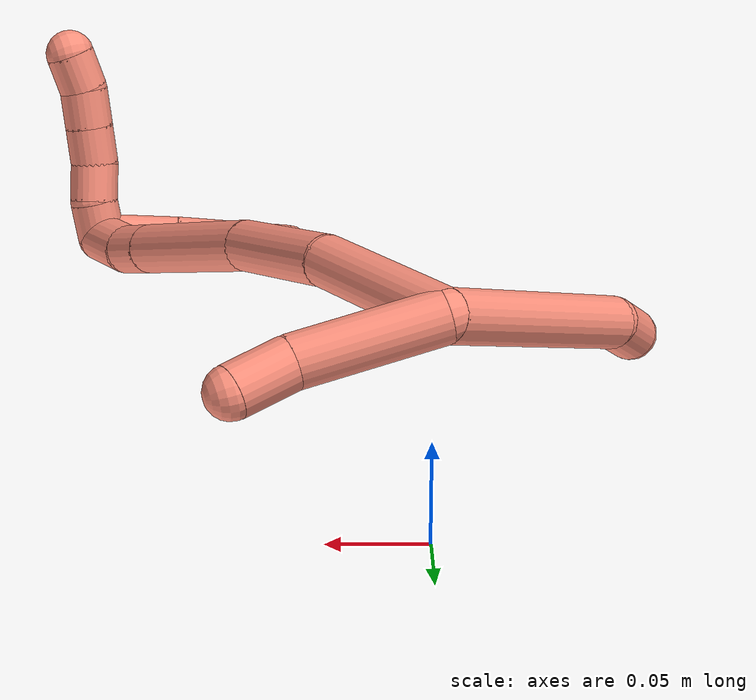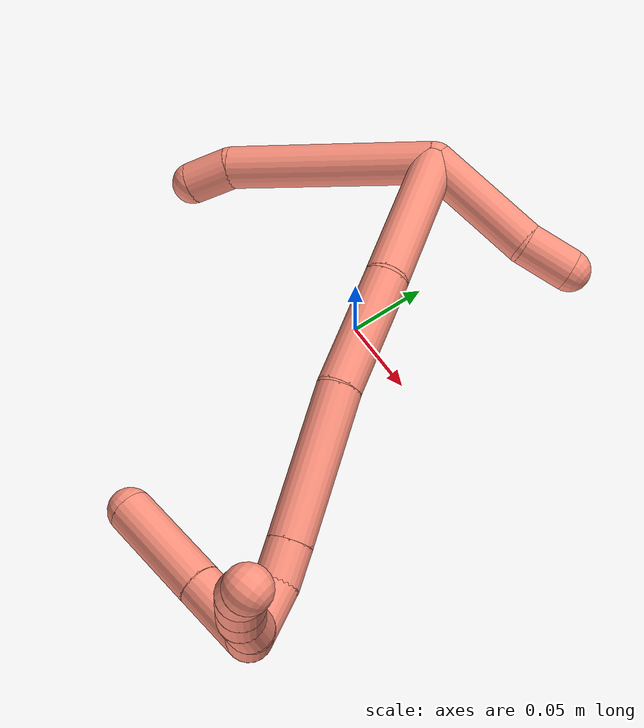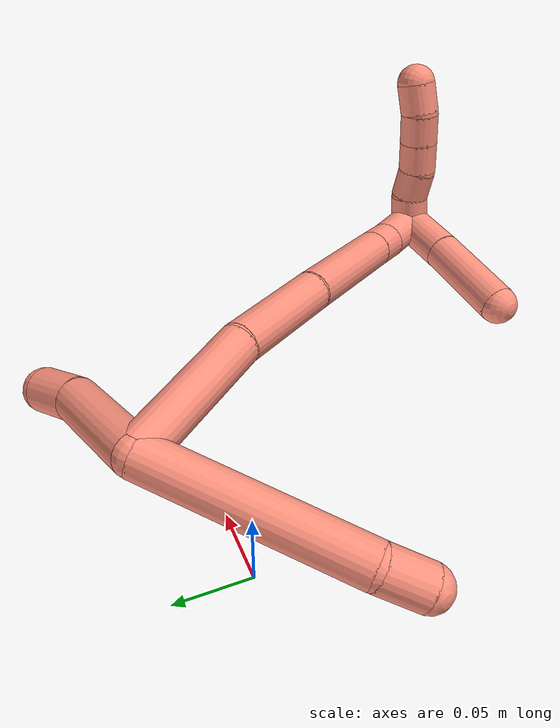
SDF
<sdf version="1.7">
 <world name="default">
  <model name="photoneo_s_sensor">
   <static>1</static>
   <pose>0 0 2 1.57079 1.57079 3.14159</pose>
   <link name="link">
    <inertial><mass>0.1</mass></inertial>
    <sensor name="sensor" type="depth">
     <update_rate>30</update_rate>
     <camera>
      <horizontal_fov>1.22</horizontal_fov>
      <image><width>1920</width><height>1200</height><format>B8G8R8</format></image>
      <clip><near>0.1</near><far>4</far></clip>
      <depth_camera><output>points</output></depth_camera>
     </camera>
     <plugin name="camera_plugin" filename="libgazebo_ros_depth_camera.so">
      <baseline>0.2</baseline>
      <alwaysOn>1</alwaysOn>
      <updateRate>0.0</updateRate>
      <cameraName>camera_ir</cameraName>
      <imageTopicName>/camera/color/image_raw</imageTopicName>
      <cameraInfoTopicName>/camera/color/camera_info</cameraInfoTopicName>
      <depthImageTopicName>/camera/depth/image_raw</depthImageTopicName>
      <depthImageCameraInfoTopicName>/camera/depth/camera_info</depthImageCameraInfoTopicName>
      <pointCloudTopicName>/camera/depth/points</pointCloudTopicName>
      <frameName>fr_optical</frameName>
      <pointCloudCutoff>0.1</pointCloudCutoff>
      <pointCloudCutoffMax>2.0</pointCloudCutoffMax>
      <distortionK1>0</distortionK1>
      <distortionK2>0</distortionK2>
      <distortionK3>0</distortionK3>
      <distortionT1>0</distortionT1>
      <distortionT2>0</distortionT2>
      <CxPrime>0</CxPrime>
      <Cx>0</Cx>
      <Cy>0</Cy>
      <focalLength>0</focalLength>
      <hackBaseline>0</hackBaseline>
     </plugin>
    </sensor>
   </link>
  </model>
  <model name="bin">
   <static>1</static>
   <link name="bottom">
    <collision name="collision-bottom">
     <pose>0 0 -0.01 0 -0 0</pose>
     <geometry><box><size>0.8 0.6 0.02</size></box></geometry>
     <surface>
      <friction><ode><mu>100</mu><mu2>100</mu2></ode></friction>
      <contact><collide_bitmask>65535</collide_bitmask></contact>
     </surface>
    </collision>
   </link>
   <link name="west_wall">
    <collision name="collision-west_wall">
     <pose>-0.41 0 0.1 0 -0 0</pose>
     <geometry><box><size>0.02 0.6 0.2</size></box></geometry>
     <surface>
      <friction><ode><mu>100</mu><mu2>100</mu2></ode></friction>
      <contact><collide_bitmask>65535</collide_bitmask></contact>
     </surface>
    </collision>
   </link>
   <link name="east_wall">
    <collision name="collision-east_wall">
     <pose>0.41 0 0.1 0 -0 0</pose>
     <geometry><box><size>0.02 0.6 0.2</size></box></geometry>
     <surface>
      <friction><ode><mu>100</mu><mu2>100</mu2></ode></friction>
      <contact><collide_bitmask>65535</collide_bitmask></contact>
     </surface>
    </collision>
   </link>
   <link name="south_wall">
    <collision name="collision-south_wall">
     <pose>0 -0.31 0.1 0 -0 0</pose>
     <geometry><box><size>0.8 0.02 0.2</size></box></geometry>
     <surface>
      <friction><ode><mu>100</mu><mu2>100</mu2></ode></friction>
      <contact><collide_bitmask>65535</collide_bitmask></contact>
     </surface>
    </collision>
   </link>
   <link name="north_wall">
    <collision name="collision-north_wall">
     <pose>0 0.31 0.1 0 -0 0</pose>
     <geometry><box><size>0.8 0.02 0.2</size></box></geometry>
     <surface>
      <friction><ode><mu>100</mu><mu2>100</mu2></ode></friction>
      <contact><collide_bitmask>65535</collide_bitmask></contact>
     </surface>
    </collision>
   </link>
  </model>
  <model name="16">
   <static>0</static>
   <link name="16">
    <collision name="collision-cylinder-e_1_2_8">
     <pose>0.034185 -0.01733 -0.048236 2.79668 0.588213 2.0978</pose>
     <geometry><cylinder><radius>0.0125</radius><length>0.123218</length></cylinder></geometry>
     <surface>
      <friction><ode><mu>1.16</mu><mu2>1.16</mu2><slip1>0</slip1><slip2>0</slip2></ode></friction>
      <contact><ode><kp>1e+06</kp><kd>1</kd><max_vel>0</max_vel><min_depth>0.001</min_depth></ode></contact>
     </surface>
    </collision>
    <visual name="visual-cylinder-e_1_2_8">
     <pose>0.034185 -0.01733 -0.048236 2.79668 0.588213 2.0978</pose>
     <geometry><cylinder><radius>0.0125</radius><length>0.123218</length></cylinder></geometry>
     <material><ambient>1 0.576471 0.494118 1</ambient></material>
    </visual>
    <collision name="collision-cylinder-e_2_8_6">
     <pose>0.078676 -0.039221 -0.103705 2.57892 0.878152 2.03833</pose>
     <geometry><cylinder><radius>0.0125</radius><length>0.026782</length></cylinder></geometry>
     <surface>
      <friction><ode><mu>1.16</mu><mu2>1.16</mu2><slip1>0</slip1><slip2>0</slip2></ode></friction>
      <contact><ode><kp>1e+06</kp><kd>1</kd><max_vel>0</max_vel><min_depth>0.001</min_depth></ode></contact>
     </surface>
    </collision>
    <visual name="visual-cylinder-e_2_8_6">
     <pose>0.078676 -0.039221 -0.103705 2.57892 0.878152 2.03833</pose>
     <geometry><cylinder><radius>0.0125</radius><length>0.026782</length></cylinder></geometry>
     <material><ambient>1 0.576471 0.494118 1</ambient></material>
    </visual>
    <collision name="collision-cylinder-e_1_2_9">
     <pose>0.00176 -0.001161 0.035125 0.033033 0.050034 0.000827</pose>
     <geometry><cylinder><radius>0.0125</radius><length>0.070377</length></cylinder></geometry>
     <surface>
      <friction><ode><mu>1.16</mu><mu2>1.16</mu2><slip1>0</slip1><slip2>0</slip2></ode></friction>
      <contact><ode><kp>1e+06</kp><kd>1</kd><max_vel>0</max_vel><min_depth>0.001</min_depth></ode></contact>
     </surface>
    </collision>
    <visual name="visual-cylinder-e_1_2_9">
     <pose>0.00176 -0.001161 0.035125 0.033033 0.050034 0.000827</pose>
     <geometry><cylinder><radius>0.0125</radius><length>0.070377</length></cylinder></geometry>
     <material><ambient>1 0.576471 0.494118 1</ambient></material>
    </visual>
    <collision name="collision-cylinder-e_2_9_5">
     <pose>0.003787 0.000984 0.084686 -0.225121 0.018059 -0.002041</pose>
     <geometry><cylinder><radius>0.0125</radius><length>0.029623</length></cylinder></geometry>
     <surface>
      <friction><ode><mu>1.16</mu><mu2>1.16</mu2><slip1>0</slip1><slip2>0</slip2></ode></friction>
      <contact><ode><kp>1e+06</kp><kd>1</kd><max_vel>0</max_vel><min_depth>0.001</min_depth></ode></contact>
     </surface>
    </collision>
    <visual name="visual-cylinder-e_2_9_5">
     <pose>0.003787 0.000984 0.084686 -0.225121 0.018059 -0.002041</pose>
     <geometry><cylinder><radius>0.0125</radius><length>0.029623</length></cylinder></geometry>
     <material><ambient>1 0.576471 0.494118 1</ambient></material>
    </visual>
    <collision name="collision-cylinder-e_1_2_10">
     <pose>0.011944 -0.040115 0.013662 1.24255 0.274718 0.197257</pose>
     <geometry><cylinder><radius>0.0125</radius><length>0.088058</length></cylinder></geometry>
     <surface>
      <friction><ode><mu>1.16</mu><mu2>1.16</mu2><slip1>0</slip1><slip2>0</slip2></ode></friction>
      <contact><ode><kp>1e+06</kp><kd>1</kd><max_vel>0</max_vel><min_depth>0.001</min_depth></ode></contact>
     </surface>
    </collision>
    <visual name="visual-cylinder-e_1_2_10">
     <pose>0.011944 -0.040115 0.013662 1.24255 0.274718 0.197257</pose>
     <geometry><cylinder><radius>0.0125</radius><length>0.088058</length></cylinder></geometry>
     <material><ambient>1 0.576471 0.494118 1</ambient></material>
    </visual>
    <collision name="collision-cylinder-e_2_10_11">
     <pose>0.039448 -0.110076 0.037898 1.2303 0.456771 0.325585</pose>
     <geometry><cylinder><radius>0.0125</radius><length>0.07056</length></cylinder></geometry>
     <surface>
      <friction><ode><mu>1.16</mu><mu2>1.16</mu2><slip1>0</slip1><slip2>0</slip2></ode></friction>
      <contact><ode><kp>1e+06</kp><kd>1</kd><max_vel>0</max_vel><min_depth>0.001</min_depth></ode></contact>
     </surface>
    </collision>
    <visual name="visual-cylinder-e_2_10_11">
     <pose>0.039448 -0.110076 0.037898 1.2303 0.456771 0.325585</pose>
     <geometry><cylinder><radius>0.0125</radius><length>0.07056</length></cylinder></geometry>
     <material><ambient>1 0.576471 0.494118 1</ambient></material>
    </visual>
    <collision name="collision-cylinder-e_3_11_12">
     <pose>0.077168 -0.173612 0.065296 1.10767 0.531869 0.333753</pose>
     <geometry><cylinder><radius>0.0125</radius><length>0.087388</length></cylinder></geometry>
     <surface>
      <friction><ode><mu>1.16</mu><mu2>1.16</mu2><slip1>0</slip1><slip2>0</slip2></ode></friction>
      <contact><ode><kp>1e+06</kp><kd>1</kd><max_vel>0</max_vel><min_depth>0.001</min_depth></ode></contact>
     </surface>
    </collision>
    <visual name="visual-cylinder-e_3_11_12">
     <pose>0.077168 -0.173612 0.065296 1.10767 0.531869 0.333753</pose>
     <geometry><cylinder><radius>0.0125</radius><length>0.087388</length></cylinder></geometry>
     <material><ambient>1 0.576471 0.494118 1</ambient></material>
    </visual>
    <collision name="collision-cylinder-e_4_12_13">
     <pose>0.105084 -0.215989 0.086314 1.12087 0.538102 0.342686</pose>
     <geometry><cylinder><radius>0.0125</radius><length>0.022466</length></cylinder></geometry>
     <surface>
      <friction><ode><mu>1.16</mu><mu2>1.16</mu2><slip1>0</slip1><slip2>0</slip2></ode></friction>
      <contact><ode><kp>1e+06</kp><kd>1</kd><max_vel>0</max_vel><min_depth>0.001</min_depth></ode></contact>
     </surface>
    </collision>
    <visual name="visual-cylinder-e_4_12_13">
     <pose>0.105084 -0.215989 0.086314 1.12087 0.538102 0.342686</pose>
     <geometry><cylinder><radius>0.0125</radius><length>0.022466</length></cylinder></geometry>
     <material><ambient>1 0.576471 0.494118 1</ambient></material>
    </visual>
    <collision name="collision-cylinder-e_5_13_1">
     <pose>0.116621 -0.238857 0.094247 1.3131 0.375428 0.290683</pose>
     <geometry><cylinder><radius>0.0125</radius><length>0.031528</length></cylinder></geometry>
     <surface>
      <friction><ode><mu>1.16</mu><mu2>1.16</mu2><slip1>0</slip1><slip2>0</slip2></ode></friction>
      <contact><ode><kp>1e+06</kp><kd>1</kd><max_vel>0</max_vel><min_depth>0.001</min_depth></ode></contact>
     </surface>
    </collision>
    <visual name="visual-cylinder-e_5_13_1">
     <pose>0.116621 -0.238857 0.094247 1.3131 0.375428 0.290683</pose>
     <geometry><cylinder><radius>0.0125</radius><length>0.031528</length></cylinder></geometry>
     <material><ambient>1 0.576471 0.494118 1</ambient></material>
    </visual>
    <collision name="collision-cylinder-e_1_1_14">
     <pose>0.125584 -0.24773 0.079097 -2.86757 0.160809 -1.05777</pose>
     <geometry><cylinder><radius>0.0125</radius><length>0.039752</length></cylinder></geometry>
     <surface>
      <friction><ode><mu>1.16</mu><mu2>1.16</mu2><slip1>0</slip1><slip2>0</slip2></ode></friction>
      <contact><ode><kp>1e+06</kp><kd>1</kd><max_vel>0</max_vel><min_depth>0.001</min_depth></ode></contact>
     </surface>
    </collision>
    <visual name="visual-cylinder-e_1_1_14">
     <pose>0.125584 -0.24773 0.079097 -2.86757 0.160809 -1.05777</pose>
     <geometry><cylinder><radius>0.0125</radius><length>0.039752</length></cylinder></geometry>
     <material><ambient>1 0.576471 0.494118 1</ambient></material>
    </visual>
    <collision name="collision-cylinder-e_2_14_4">
     <pose>0.13444 -0.233668 0.031949 -2.84128 0.189477 -1.12159</pose>
     <geometry><cylinder><radius>0.0125</radius><length>0.060248</length></cylinder></geometry>
     <surface>
      <friction><ode><mu>1.16</mu><mu2>1.16</mu2><slip1>0</slip1><slip2>0</slip2></ode></friction>
      <contact><ode><kp>1e+06</kp><kd>1</kd><max_vel>0</max_vel><min_depth>0.001</min_depth></ode></contact>
     </surface>
    </collision>
    <visual name="visual-cylinder-e_2_14_4">
     <pose>0.13444 -0.233668 0.031949 -2.84128 0.189477 -1.12159</pose>
     <geometry><cylinder><radius>0.0125</radius><length>0.060248</length></cylinder></geometry>
     <material><ambient>1 0.576471 0.494118 1</ambient></material>
    </visual>
    <collision name="collision-cylinder-e_1_1_15">
     <pose>0.113606 -0.257791 0.097747 1.62063 -1.07486 -1.11922</pose>
     <geometry><cylinder><radius>0.0125</radius><length>0.02</length></cylinder></geometry>
     <surface>
      <friction><ode><mu>1.16</mu><mu2>1.16</mu2><slip1>0</slip1><slip2>0</slip2></ode></friction>
      <contact><ode><kp>1e+06</kp><kd>1</kd><max_vel>0</max_vel><min_depth>0.001</min_depth></ode></contact>
     </surface>
    </collision>
    <visual name="visual-cylinder-e_1_1_15">
     <pose>0.113606 -0.257791 0.097747 1.62063 -1.07486 -1.11922</pose>
     <geometry><cylinder><radius>0.0125</radius><length>0.02</length></cylinder></geometry>
     <material><ambient>1 0.576471 0.494118 1</ambient></material>
    </visual>
    <collision name="collision-cylinder-e_2_15_16">
     <pose>0.097006 -0.268173 0.094792 2.02069 -0.895466 -1.3064</pose>
     <geometry><cylinder><radius>0.0125</radius><length>0.02</length></cylinder></geometry>
     <surface>
      <friction><ode><mu>1.16</mu><mu2>1.16</mu2><slip1>0</slip1><slip2>0</slip2></ode></friction>
      <contact><ode><kp>1e+06</kp><kd>1</kd><max_vel>0</max_vel><min_depth>0.001</min_depth></ode></contact>
     </surface>
    </collision>
    <visual name="visual-cylinder-e_2_15_16">
     <pose>0.097006 -0.268173 0.094792 2.02069 -0.895466 -1.3064</pose>
     <geometry><cylinder><radius>0.0125</radius><length>0.02</length></cylinder></geometry>
     <material><ambient>1 0.576471 0.494118 1</ambient></material>
    </visual>
    <collision name="collision-cylinder-e_3_16_17">
     <pose>0.080446 -0.278552 0.091177 1.75734 -1.06638 -1.23751</pose>
     <geometry><cylinder><radius>0.0125</radius><length>0.02</length></cylinder></geometry>
     <surface>
      <friction><ode><mu>1.16</mu><mu2>1.16</mu2><slip1>0</slip1><slip2>0</slip2></ode></friction>
      <contact><ode><kp>1e+06</kp><kd>1</kd><max_vel>0</max_vel><min_depth>0.001</min_depth></ode></contact>
     </surface>
    </collision>
    <visual name="visual-cylinder-e_3_16_17">
     <pose>0.080446 -0.278552 0.091177 1.75734 -1.06638 -1.23751</pose>
     <geometry><cylinder><radius>0.0125</radius><length>0.02</length></cylinder></geometry>
     <material><ambient>1 0.576471 0.494118 1</ambient></material>
    </visual>
    <collision name="collision-cylinder-e_4_17_18">
     <pose>0.062886 -0.287962 0.089425 1.75227 -1.07714 -1.24423</pose>
     <geometry><cylinder><radius>0.0125</radius><length>0.02</length></cylinder></geometry>
     <surface>
      <friction><ode><mu>1.16</mu><mu2>1.16</mu2><slip1>0</slip1><slip2>0</slip2></ode></friction>
      <contact><ode><kp>1e+06</kp><kd>1</kd><max_vel>0</max_vel><min_depth>0.001</min_depth></ode></contact>
     </surface>
    </collision>
    <visual name="visual-cylinder-e_4_17_18">
     <pose>0.062886 -0.287962 0.089425 1.75227 -1.07714 -1.24423</pose>
     <geometry><cylinder><radius>0.0125</radius><length>0.02</length></cylinder></geometry>
     <material><ambient>1 0.576471 0.494118 1</ambient></material>
    </visual>
    <collision name="collision-cylinder-e_5_18_3">
     <pose>0.045298 -0.297215 0.089905 1.28794 -1.07211 -0.839041</pose>
     <geometry><cylinder><radius>0.0125</radius><length>0.02</length></cylinder></geometry>
     <surface>
      <friction><ode><mu>1.16</mu><mu2>1.16</mu2><slip1>0</slip1><slip2>0</slip2></ode></friction>
      <contact><ode><kp>1e+06</kp><kd>1</kd><max_vel>0</max_vel><min_depth>0.001</min_depth></ode></contact>
     </surface>
    </collision>
    <visual name="visual-cylinder-e_5_18_3">
     <pose>0.045298 -0.297215 0.089905 1.28794 -1.07211 -0.839041</pose>
     <geometry><cylinder><radius>0.0125</radius><length>0.02</length></cylinder></geometry>
     <material><ambient>1 0.576471 0.494118 1</ambient></material>
    </visual>
    <collision name="collision-sphere-3">
     <pose>0.036515 -0.301808 0.09124 0 -0 0</pose>
     <geometry><sphere><radius>0.0125</radius></sphere></geometry>
     <surface>
      <friction><ode><mu>1.16</mu><mu2>1.16</mu2><slip1>0</slip1><slip2>0</slip2></ode></friction>
      <contact><ode><kp>1e+06</kp><kd>1</kd><max_vel>0</max_vel><min_depth>0.001</min_depth></ode></contact>
     </surface>
    </collision>
    <visual name="visual-sphere-3">
     <pose>0.036515 -0.301808 0.09124 0 -0 0</pose>
     <geometry><sphere><radius>0.0125</radius></sphere></geometry>
     <material><ambient>1 0.576471 0.494118 1</ambient></material>
    </visual>
    <collision name="collision-sphere-10">
     <pose>0.023888 -0.080231 0.027324 0 -0 0</pose>
     <geometry><sphere><radius>0.0125</radius></sphere></geometry>
     <surface>
      <friction><ode><mu>1.16</mu><mu2>1.16</mu2><slip1>0</slip1><slip2>0</slip2></ode></friction>
      <contact><ode><kp>1e+06</kp><kd>1</kd><max_vel>0</max_vel><min_depth>0.001</min_depth></ode></contact>
     </surface>
    </collision>
    <visual name="visual-sphere-10">
     <pose>0.023888 -0.080231 0.027324 0 -0 0</pose>
     <geometry><sphere><radius>0.0125</radius></sphere></geometry>
     <material><ambient>1 0.576471 0.494118 1</ambient></material>
    </visual>
    <collision name="collision-sphere-5">
     <pose>0.004055 0.00429 0.099121 0 -0 0</pose>
     <geometry><sphere><radius>0.0125</radius></sphere></geometry>
     <surface>
      <friction><ode><mu>1.16</mu><mu2>1.16</mu2><slip1>0</slip1><slip2>0</slip2></ode></friction>
      <contact><ode><kp>1e+06</kp><kd>1</kd><max_vel>0</max_vel><min_depth>0.001</min_depth></ode></contact>
     </surface>
    </collision>
    <visual name="visual-sphere-5">
     <pose>0.004055 0.00429 0.099121 0 -0 0</pose>
     <geometry><sphere><radius>0.0125</radius></sphere></geometry>
     <material><ambient>1 0.576471 0.494118 1</ambient></material>
    </visual>
    <collision name="collision-sphere-6">
     <pose>0.088981 -0.043783 -0.110937 0 -0 0</pose>
     <geometry><sphere><radius>0.0125</radius></sphere></geometry>
     <surface>
      <friction><ode><mu>1.16</mu><mu2>1.16</mu2><slip1>0</slip1><slip2>0</slip2></ode></friction>
      <contact><ode><kp>1e+06</kp><kd>1</kd><max_vel>0</max_vel><min_depth>0.001</min_depth></ode></contact>
     </surface>
    </collision>
    <visual name="visual-sphere-6">
     <pose>0.088981 -0.043783 -0.110937 0 -0 0</pose>
     <geometry><sphere><radius>0.0125</radius></sphere></geometry>
     <material><ambient>1 0.576471 0.494118 1</ambient></material>
    </visual>
    <collision name="collision-sphere-9">
     <pose>0.00352 -0.002321 0.07025 0 -0 0</pose>
     <geometry><sphere><radius>0.0125</radius></sphere></geometry>
     <surface>
      <friction><ode><mu>1.16</mu><mu2>1.16</mu2><slip1>0</slip1><slip2>0</slip2></ode></friction>
      <contact><ode><kp>1e+06</kp><kd>1</kd><max_vel>0</max_vel><min_depth>0.001</min_depth></ode></contact>
     </surface>
    </collision>
    <visual name="visual-sphere-9">
     <pose>0.00352 -0.002321 0.07025 0 -0 0</pose>
     <geometry><sphere><radius>0.0125</radius></sphere></geometry>
     <material><ambient>1 0.576471 0.494118 1</ambient></material>
    </visual>
    <collision name="collision-sphere-2">
     <geometry><sphere><radius>0.0125</radius></sphere></geometry>
     <surface>
      <friction><ode><mu>1.16</mu><mu2>1.16</mu2><slip1>0</slip1><slip2>0</slip2></ode></friction>
      <contact><ode><kp>1e+06</kp><kd>1</kd><max_vel>0</max_vel><min_depth>0.001</min_depth></ode></contact>
     </surface>
    </collision>
    <visual name="visual-sphere-2">
     <geometry><sphere><radius>0.0125</radius></sphere></geometry>
     <material><ambient>1 0.576471 0.494118 1</ambient></material>
    </visual>
    <collision name="collision-sphere-8">
     <pose>0.068371 -0.03466 -0.096472 0 -0 0</pose>
     <geometry><sphere><radius>0.0125</radius></sphere></geometry>
     <surface>
      <friction><ode><mu>1.16</mu><mu2>1.16</mu2><slip1>0</slip1><slip2>0</slip2></ode></friction>
      <contact><ode><kp>1e+06</kp><kd>1</kd><max_vel>0</max_vel><min_depth>0.001</min_depth></ode></contact>
     </surface>
    </collision>
    <visual name="visual-sphere-8">
     <pose>0.068371 -0.03466 -0.096472 0 -0 0</pose>
     <geometry><sphere><radius>0.0125</radius></sphere></geometry>
     <material><ambient>1 0.576471 0.494118 1</ambient></material>
    </visual>
    <collision name="collision-sphere-11">
     <pose>0.055009 -0.139921 0.048472 0 -0 0</pose>
     <geometry><sphere><radius>0.0125</radius></sphere></geometry>
     <surface>
      <friction><ode><mu>1.16</mu><mu2>1.16</mu2><slip1>0</slip1><slip2>0</slip2></ode></friction>
      <contact><ode><kp>1e+06</kp><kd>1</kd><max_vel>0</max_vel><min_depth>0.001</min_depth></ode></contact>
     </surface>
    </collision>
    <visual name="visual-sphere-11">
     <pose>0.055009 -0.139921 0.048472 0 -0 0</pose>
     <geometry><sphere><radius>0.0125</radius></sphere></geometry>
     <material><ambient>1 0.576471 0.494118 1</ambient></material>
    </visual>
    <collision name="collision-sphere-12">
     <pose>0.099327 -0.207304 0.082119 0 -0 0</pose>
     <geometry><sphere><radius>0.0125</radius></sphere></geometry>
     <surface>
      <friction><ode><mu>1.16</mu><mu2>1.16</mu2><slip1>0</slip1><slip2>0</slip2></ode></friction>
      <contact><ode><kp>1e+06</kp><kd>1</kd><max_vel>0</max_vel><min_depth>0.001</min_depth></ode></contact>
     </surface>
    </collision>
    <visual name="visual-sphere-12">
     <pose>0.099327 -0.207304 0.082119 0 -0 0</pose>
     <geometry><sphere><radius>0.0125</radius></sphere></geometry>
     <material><ambient>1 0.576471 0.494118 1</ambient></material>
    </visual>
    <collision name="collision-sphere-13">
     <pose>0.110841 -0.224675 0.090509 0 -0 0</pose>
     <geometry><sphere><radius>0.0125</radius></sphere></geometry>
     <surface>
      <friction><ode><mu>1.16</mu><mu2>1.16</mu2><slip1>0</slip1><slip2>0</slip2></ode></friction>
      <contact><ode><kp>1e+06</kp><kd>1</kd><max_vel>0</max_vel><min_depth>0.001</min_depth></ode></contact>
     </surface>
    </collision>
    <visual name="visual-sphere-13">
     <pose>0.110841 -0.224675 0.090509 0 -0 0</pose>
     <geometry><sphere><radius>0.0125</radius></sphere></geometry>
     <material><ambient>1 0.576471 0.494118 1</ambient></material>
    </visual>
    <collision name="collision-sphere-1">
     <pose>0.122402 -0.253039 0.097984 0 -0 0</pose>
     <geometry><sphere><radius>0.0125</radius></sphere></geometry>
     <surface>
      <friction><ode><mu>1.16</mu><mu2>1.16</mu2><slip1>0</slip1><slip2>0</slip2></ode></friction>
      <contact><ode><kp>1e+06</kp><kd>1</kd><max_vel>0</max_vel><min_depth>0.001</min_depth></ode></contact>
     </surface>
    </collision>
    <visual name="visual-sphere-1">
     <pose>0.122402 -0.253039 0.097984 0 -0 0</pose>
     <geometry><sphere><radius>0.0125</radius></sphere></geometry>
     <material><ambient>1 0.576471 0.494118 1</ambient></material>
    </visual>
    <collision name="collision-sphere-18">
     <pose>0.05408 -0.292622 0.08857 0 -0 0</pose>
     <geometry><sphere><radius>0.0125</radius></sphere></geometry>
     <surface>
      <friction><ode><mu>1.16</mu><mu2>1.16</mu2><slip1>0</slip1><slip2>0</slip2></ode></friction>
      <contact><ode><kp>1e+06</kp><kd>1</kd><max_vel>0</max_vel><min_depth>0.001</min_depth></ode></contact>
     </surface>
    </collision>
    <visual name="visual-sphere-18">
     <pose>0.05408 -0.292622 0.08857 0 -0 0</pose>
     <geometry><sphere><radius>0.0125</radius></sphere></geometry>
     <material><ambient>1 0.576471 0.494118 1</ambient></material>
    </visual>
    <collision name="collision-sphere-14">
     <pose>0.128766 -0.24242 0.06021 0 -0 0</pose>
     <geometry><sphere><radius>0.0125</radius></sphere></geometry>
     <surface>
      <friction><ode><mu>1.16</mu><mu2>1.16</mu2><slip1>0</slip1><slip2>0</slip2></ode></friction>
      <contact><ode><kp>1e+06</kp><kd>1</kd><max_vel>0</max_vel><min_depth>0.001</min_depth></ode></contact>
     </surface>
    </collision>
    <visual name="visual-sphere-14">
     <pose>0.128766 -0.24242 0.06021 0 -0 0</pose>
     <geometry><sphere><radius>0.0125</radius></sphere></geometry>
     <material><ambient>1 0.576471 0.494118 1</ambient></material>
    </visual>
    <collision name="collision-sphere-4">
     <pose>0.140114 -0.224917 0.003688 0 -0 0</pose>
     <geometry><sphere><radius>0.0125</radius></sphere></geometry>
     <surface>
      <friction><ode><mu>1.16</mu><mu2>1.16</mu2><slip1>0</slip1><slip2>0</slip2></ode></friction>
      <contact><ode><kp>1e+06</kp><kd>1</kd><max_vel>0</max_vel><min_depth>0.001</min_depth></ode></contact>
     </surface>
    </collision>
    <visual name="visual-sphere-4">
     <pose>0.140114 -0.224917 0.003688 0 -0 0</pose>
     <geometry><sphere><radius>0.0125</radius></sphere></geometry>
     <material><ambient>1 0.576471 0.494118 1</ambient></material>
    </visual>
    <collision name="collision-sphere-15">
     <pose>0.104811 -0.262544 0.09751 0 -0 0</pose>
     <geometry><sphere><radius>0.0125</radius></sphere></geometry>
     <surface>
      <friction><ode><mu>1.16</mu><mu2>1.16</mu2><slip1>0</slip1><slip2>0</slip2></ode></friction>
      <contact><ode><kp>1e+06</kp><kd>1</kd><max_vel>0</max_vel><min_depth>0.001</min_depth></ode></contact>
     </surface>
    </collision>
    <visual name="visual-sphere-15">
     <pose>0.104811 -0.262544 0.09751 0 -0 0</pose>
     <geometry><sphere><radius>0.0125</radius></sphere></geometry>
     <material><ambient>1 0.576471 0.494118 1</ambient></material>
    </visual>
    <collision name="collision-sphere-16">
     <pose>0.089201 -0.273803 0.092073 0 -0 0</pose>
     <geometry><sphere><radius>0.0125</radius></sphere></geometry>
     <surface>
      <friction><ode><mu>1.16</mu><mu2>1.16</mu2><slip1>0</slip1><slip2>0</slip2></ode></friction>
      <contact><ode><kp>1e+06</kp><kd>1</kd><max_vel>0</max_vel><min_depth>0.001</min_depth></ode></contact>
     </surface>
    </collision>
    <visual name="visual-sphere-16">
     <pose>0.089201 -0.273803 0.092073 0 -0 0</pose>
     <geometry><sphere><radius>0.0125</radius></sphere></geometry>
     <material><ambient>1 0.576471 0.494118 1</ambient></material>
    </visual>
    <collision name="collision-sphere-17">
     <pose>0.071692 -0.283301 0.09028 0 -0 0</pose>
     <geometry><sphere><radius>0.0125</radius></sphere></geometry>
     <surface>
      <friction><ode><mu>1.16</mu><mu2>1.16</mu2><slip1>0</slip1><slip2>0</slip2></ode></friction>
      <contact><ode><kp>1e+06</kp><kd>1</kd><max_vel>0</max_vel><min_depth>0.001</min_depth></ode></contact>
     </surface>
    </collision>
    <visual name="visual-sphere-17">
     <pose>0.071692 -0.283301 0.09028 0 -0 0</pose>
     <geometry><sphere><radius>0.0125</radius></sphere></geometry>
     <material><ambient>1 0.576471 0.494118 1</ambient></material>
    </visual>
    <inertial>
     <pose>0.058998 -0.125083 0.033445 0 -0 0</pose>
     <mass>0.75</mass>
     <inertia>
      <ixx>0.000258</ixx>
      <ixy>0</ixy>
      <ixz>0</ixz>
      <iyy>0.000311</iyy>
      <iyz>0</iyz>
      <izz>1.9e-05</izz>
     </inertia>
    </inertial>
   </link>
   <pose>-0.003036 0.05773 0.126785 -2.01682 1.09524 -1.67878</pose>
  </model>
 </world>
</sdf>
